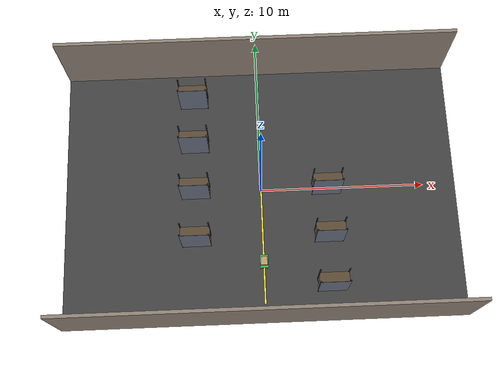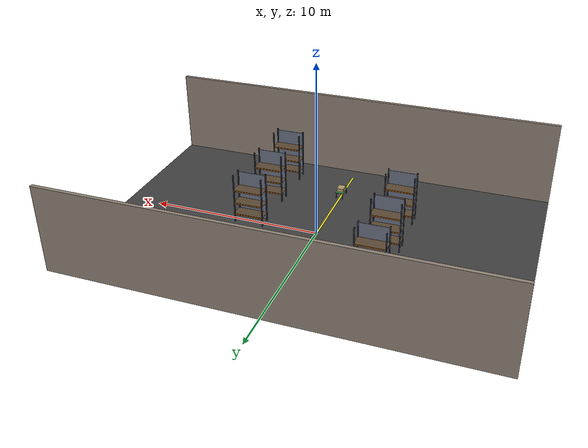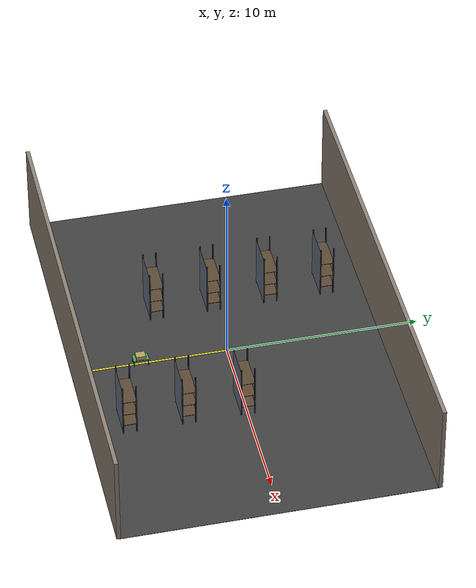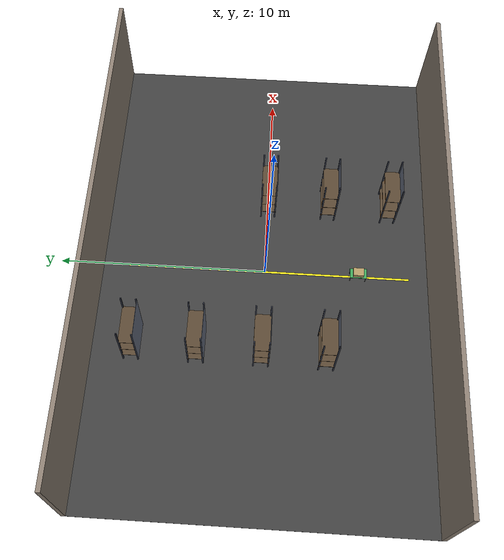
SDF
<sdf version="1.8">
 <world name="warehouse_world">
  <model name="floor">
   <static>true</static>
   <pose>0 0 -0.01 0 0 0</pose>
   <link name="link">
    <collision name="col"><geometry><box><size>24 16 0.02</size></box></geometry></collision>
    <visual name="vis">
     <geometry><box><size>24 16 0.02</size></box></geometry>
     <material><ambient>0.2 0.2 0.2 1</ambient><diffuse>0.25 0.25 0.25 1</diffuse></material>
    </visual>
   </link>
  </model>
  <model name="wall_north">
   <static>true</static>
   <pose>0 8 2.5 0 0 0</pose>
   <link name="link">
    <collision name="col"><geometry><box><size>24 0.2 5</size></box></geometry></collision>
    <visual name="vis">
     <geometry><box><size>24 0.2 5</size></box></geometry>
     <material><ambient>0.5 0.45 0.4 1</ambient><diffuse>0.55 0.5 0.45 1</diffuse></material>
    </visual>
   </link>
  </model>
  <model name="wall_south">
   <static>true</static>
   <pose>0 -8 2.5 0 0 0</pose>
   <link name="link">
    <collision name="col"><geometry><box><size>24 0.2 5</size></box></geometry></collision>
    <visual name="vis">
     <geometry><box><size>24 0.2 5</size></box></geometry>
     <material><ambient>0.5 0.45 0.4 1</ambient><diffuse>0.55 0.5 0.45 1</diffuse></material>
    </visual>
   </link>
  </model>
  <model name="rack_B2">
   <static>true</static>
   <pose>-4 -3 0 0 0 0</pose>
   <link name="link">
    <visual name="u1">
     <pose>0.84 0.34 1.5 0 0 0</pose>
     <geometry><box><size>0.06 0.06 3.0</size></box></geometry>
     <material><ambient>0.15 0.18 0.22 1</ambient><diffuse>0.20 0.22 0.28 1</diffuse></material>
    </visual>
    <collision name="u1c">
     <pose>0.84 0.34 1.5 0 0 0</pose>
     <geometry><box><size>0.06 0.06 3.0</size></box></geometry>
    </collision>
    <visual name="u2">
     <pose>0.84 -0.34 1.5 0 0 0</pose>
     <geometry><box><size>0.06 0.06 3.0</size></box></geometry>
     <material><ambient>0.15 0.18 0.22 1</ambient><diffuse>0.20 0.22 0.28 1</diffuse></material>
    </visual>
    <collision name="u2c">
     <pose>0.84 -0.34 1.5 0 0 0</pose>
     <geometry><box><size>0.06 0.06 3.0</size></box></geometry>
    </collision>
    <visual name="u3">
     <pose>-0.84 0.34 1.5 0 0 0</pose>
     <geometry><box><size>0.06 0.06 3.0</size></box></geometry>
     <material><ambient>0.15 0.18 0.22 1</ambient><diffuse>0.20 0.22 0.28 1</diffuse></material>
    </visual>
    <collision name="u3c">
     <pose>-0.84 0.34 1.5 0 0 0</pose>
     <geometry><box><size>0.06 0.06 3.0</size></box></geometry>
    </collision>
    <visual name="u4">
     <pose>-0.84 -0.34 1.5 0 0 0</pose>
     <geometry><box><size>0.06 0.06 3.0</size></box></geometry>
     <material><ambient>0.15 0.18 0.22 1</ambient><diffuse>0.20 0.22 0.28 1</diffuse></material>
    </visual>
    <collision name="u4c">
     <pose>-0.84 -0.34 1.5 0 0 0</pose>
     <geometry><box><size>0.06 0.06 3.0</size></box></geometry>
    </collision>
    <visual name="b1f">
     <pose>0 0.34 0.50 0 0 0</pose>
     <geometry><box><size>1.74 0.05 0.06</size></box></geometry>
     <material><ambient>0.90 0.45 0.05 1</ambient><diffuse>0.92 0.48 0.08 1</diffuse></material>
    </visual>
    <collision name="b1fc">
     <pose>0 0.34 0.50 0 0 0</pose>
     <geometry><box><size>1.74 0.05 0.06</size></box></geometry>
    </collision>
    <visual name="b1b">
     <pose>0 -0.34 0.50 0 0 0</pose>
     <geometry><box><size>1.74 0.05 0.06</size></box></geometry>
     <material><ambient>0.90 0.45 0.05 1</ambient><diffuse>0.92 0.48 0.08 1</diffuse></material>
    </visual>
    <collision name="b1bc">
     <pose>0 -0.34 0.50 0 0 0</pose>
     <geometry><box><size>1.74 0.05 0.06</size></box></geometry>
    </collision>
    <visual name="d1">
     <pose>0 0 0.54 0 0 0</pose>
     <geometry><box><size>1.74 0.74 0.02</size></box></geometry>
     <material><ambient>0.30 0.25 0.18 1</ambient><diffuse>0.35 0.28 0.20 1</diffuse></material>
    </visual>
    <collision name="d1c">
     <pose>0 0 0.54 0 0 0</pose>
     <geometry><box><size>1.74 0.74 0.02</size></box></geometry>
    </collision>
    <visual name="b2f">
     <pose>0 0.34 1.20 0 0 0</pose>
     <geometry><box><size>1.74 0.05 0.06</size></box></geometry>
     <material><ambient>0.90 0.45 0.05 1</ambient><diffuse>0.92 0.48 0.08 1</diffuse></material>
    </visual>
    <collision name="b2fc">
     <pose>0 0.34 1.20 0 0 0</pose>
     <geometry><box><size>1.74 0.05 0.06</size></box></geometry>
    </collision>
    <visual name="b2b">
     <pose>0 -0.34 1.20 0 0 0</pose>
     <geometry><box><size>1.74 0.05 0.06</size></box></geometry>
     <material><ambient>0.90 0.45 0.05 1</ambient><diffuse>0.92 0.48 0.08 1</diffuse></material>
    </visual>
    <collision name="b2bc">
     <pose>0 -0.34 1.20 0 0 0</pose>
     <geometry><box><size>1.74 0.05 0.06</size></box></geometry>
    </collision>
    <visual name="d2">
     <pose>0 0 1.24 0 0 0</pose>
     <geometry><box><size>1.74 0.74 0.02</size></box></geometry>
     <material><ambient>0.30 0.25 0.18 1</ambient><diffuse>0.35 0.28 0.20 1</diffuse></material>
    </visual>
    <collision name="d2c">
     <pose>0 0 1.24 0 0 0</pose>
     <geometry><box><size>1.74 0.74 0.02</size></box></geometry>
    </collision>
    <visual name="b3f">
     <pose>0 0.34 2.00 0 0 0</pose>
     <geometry><box><size>1.74 0.05 0.06</size></box></geometry>
     <material><ambient>0.90 0.45 0.05 1</ambient><diffuse>0.92 0.48 0.08 1</diffuse></material>
    </visual>
    <collision name="b3fc">
     <pose>0 0.34 2.00 0 0 0</pose>
     <geometry><box><size>1.74 0.05 0.06</size></box></geometry>
    </collision>
    <visual name="b3b">
     <pose>0 -0.34 2.00 0 0 0</pose>
     <geometry><box><size>1.74 0.05 0.06</size></box></geometry>
     <material><ambient>0.90 0.45 0.05 1</ambient><diffuse>0.92 0.48 0.08 1</diffuse></material>
    </visual>
    <collision name="b3bc">
     <pose>0 -0.34 2.00 0 0 0</pose>
     <geometry><box><size>1.74 0.05 0.06</size></box></geometry>
    </collision>
    <visual name="d3">
     <pose>0 0 2.04 0 0 0</pose>
     <geometry><box><size>1.74 0.74 0.02</size></box></geometry>
     <material><ambient>0.30 0.25 0.18 1</ambient><diffuse>0.35 0.28 0.20 1</diffuse></material>
    </visual>
    <collision name="d3c">
     <pose>0 0 2.04 0 0 0</pose>
     <geometry><box><size>1.74 0.74 0.02</size></box></geometry>
    </collision>
    <visual name="brace">
     <pose>0 -0.37 1.5 0 0 0</pose>
     <geometry><box><size>1.74 0.01 2.8</size></box></geometry>
     <material><ambient>0.35 0.38 0.45 1</ambient><diffuse>0.40 0.43 0.50 1</diffuse></material>
    </visual>
   </link>
  </model>
  <model name="rack_B3">
   <static>true</static>
   <pose>-4 0 0 0 0 0</pose>
   <link name="link">
    <visual name="u1">
     <pose>0.84 0.34 1.5 0 0 0</pose>
     <geometry><box><size>0.06 0.06 3.0</size></box></geometry>
     <material><ambient>0.15 0.18 0.22 1</ambient><diffuse>0.20 0.22 0.28 1</diffuse></material>
    </visual>
    <collision name="u1c">
     <pose>0.84 0.34 1.5 0 0 0</pose>
     <geometry><box><size>0.06 0.06 3.0</size></box></geometry>
    </collision>
    <visual name="u2">
     <pose>0.84 -0.34 1.5 0 0 0</pose>
     <geometry><box><size>0.06 0.06 3.0</size></box></geometry>
     <material><ambient>0.15 0.18 0.22 1</ambient><diffuse>0.20 0.22 0.28 1</diffuse></material>
    </visual>
    <collision name="u2c">
     <pose>0.84 -0.34 1.5 0 0 0</pose>
     <geometry><box><size>0.06 0.06 3.0</size></box></geometry>
    </collision>
    <visual name="u3">
     <pose>-0.84 0.34 1.5 0 0 0</pose>
     <geometry><box><size>0.06 0.06 3.0</size></box></geometry>
     <material><ambient>0.15 0.18 0.22 1</ambient><diffuse>0.20 0.22 0.28 1</diffuse></material>
    </visual>
    <collision name="u3c">
     <pose>-0.84 0.34 1.5 0 0 0</pose>
     <geometry><box><size>0.06 0.06 3.0</size></box></geometry>
    </collision>
    <visual name="u4">
     <pose>-0.84 -0.34 1.5 0 0 0</pose>
     <geometry><box><size>0.06 0.06 3.0</size></box></geometry>
     <material><ambient>0.15 0.18 0.22 1</ambient><diffuse>0.20 0.22 0.28 1</diffuse></material>
    </visual>
    <collision name="u4c">
     <pose>-0.84 -0.34 1.5 0 0 0</pose>
     <geometry><box><size>0.06 0.06 3.0</size></box></geometry>
    </collision>
    <visual name="b1f">
     <pose>0 0.34 0.50 0 0 0</pose>
     <geometry><box><size>1.74 0.05 0.06</size></box></geometry>
     <material><ambient>0.90 0.45 0.05 1</ambient><diffuse>0.92 0.48 0.08 1</diffuse></material>
    </visual>
    <collision name="b1fc">
     <pose>0 0.34 0.50 0 0 0</pose>
     <geometry><box><size>1.74 0.05 0.06</size></box></geometry>
    </collision>
    <visual name="b1b">
     <pose>0 -0.34 0.50 0 0 0</pose>
     <geometry><box><size>1.74 0.05 0.06</size></box></geometry>
     <material><ambient>0.90 0.45 0.05 1</ambient><diffuse>0.92 0.48 0.08 1</diffuse></material>
    </visual>
    <collision name="b1bc">
     <pose>0 -0.34 0.50 0 0 0</pose>
     <geometry><box><size>1.74 0.05 0.06</size></box></geometry>
    </collision>
    <visual name="d1">
     <pose>0 0 0.54 0 0 0</pose>
     <geometry><box><size>1.74 0.74 0.02</size></box></geometry>
     <material><ambient>0.30 0.25 0.18 1</ambient><diffuse>0.35 0.28 0.20 1</diffuse></material>
    </visual>
    <collision name="d1c">
     <pose>0 0 0.54 0 0 0</pose>
     <geometry><box><size>1.74 0.74 0.02</size></box></geometry>
    </collision>
    <visual name="b2f">
     <pose>0 0.34 1.20 0 0 0</pose>
     <geometry><box><size>1.74 0.05 0.06</size></box></geometry>
     <material><ambient>0.90 0.45 0.05 1</ambient><diffuse>0.92 0.48 0.08 1</diffuse></material>
    </visual>
    <collision name="b2fc">
     <pose>0 0.34 1.20 0 0 0</pose>
     <geometry><box><size>1.74 0.05 0.06</size></box></geometry>
    </collision>
    <visual name="b2b">
     <pose>0 -0.34 1.20 0 0 0</pose>
     <geometry><box><size>1.74 0.05 0.06</size></box></geometry>
     <material><ambient>0.90 0.45 0.05 1</ambient><diffuse>0.92 0.48 0.08 1</diffuse></material>
    </visual>
    <collision name="b2bc">
     <pose>0 -0.34 1.20 0 0 0</pose>
     <geometry><box><size>1.74 0.05 0.06</size></box></geometry>
    </collision>
    <visual name="d2">
     <pose>0 0 1.24 0 0 0</pose>
     <geometry><box><size>1.74 0.74 0.02</size></box></geometry>
     <material><ambient>0.30 0.25 0.18 1</ambient><diffuse>0.35 0.28 0.20 1</diffuse></material>
    </visual>
    <collision name="d2c">
     <pose>0 0 1.24 0 0 0</pose>
     <geometry><box><size>1.74 0.74 0.02</size></box></geometry>
    </collision>
    <visual name="b3f">
     <pose>0 0.34 2.00 0 0 0</pose>
     <geometry><box><size>1.74 0.05 0.06</size></box></geometry>
     <material><ambient>0.90 0.45 0.05 1</ambient><diffuse>0.92 0.48 0.08 1</diffuse></material>
    </visual>
    <collision name="b3fc">
     <pose>0 0.34 2.00 0 0 0</pose>
     <geometry><box><size>1.74 0.05 0.06</size></box></geometry>
    </collision>
    <visual name="b3b">
     <pose>0 -0.34 2.00 0 0 0</pose>
     <geometry><box><size>1.74 0.05 0.06</size></box></geometry>
     <material><ambient>0.90 0.45 0.05 1</ambient><diffuse>0.92 0.48 0.08 1</diffuse></material>
    </visual>
    <collision name="b3bc">
     <pose>0 -0.34 2.00 0 0 0</pose>
     <geometry><box><size>1.74 0.05 0.06</size></box></geometry>
    </collision>
    <visual name="d3">
     <pose>0 0 2.04 0 0 0</pose>
     <geometry><box><size>1.74 0.74 0.02</size></box></geometry>
     <material><ambient>0.30 0.25 0.18 1</ambient><diffuse>0.35 0.28 0.20 1</diffuse></material>
    </visual>
    <collision name="d3c">
     <pose>0 0 2.04 0 0 0</pose>
     <geometry><box><size>1.74 0.74 0.02</size></box></geometry>
    </collision>
    <visual name="brace">
     <pose>0 -0.37 1.5 0 0 0</pose>
     <geometry><box><size>1.74 0.01 2.8</size></box></geometry>
     <material><ambient>0.35 0.38 0.45 1</ambient><diffuse>0.40 0.43 0.50 1</diffuse></material>
    </visual>
   </link>
  </model>
  <model name="rack_B4">
   <static>true</static>
   <pose>-4 3 0 0 0 0</pose>
   <link name="link">
    <visual name="u1">
     <pose>0.84 0.34 1.5 0 0 0</pose>
     <geometry><box><size>0.06 0.06 3.0</size></box></geometry>
     <material><ambient>0.15 0.18 0.22 1</ambient><diffuse>0.20 0.22 0.28 1</diffuse></material>
    </visual>
    <collision name="u1c">
     <pose>0.84 0.34 1.5 0 0 0</pose>
     <geometry><box><size>0.06 0.06 3.0</size></box></geometry>
    </collision>
    <visual name="u2">
     <pose>0.84 -0.34 1.5 0 0 0</pose>
     <geometry><box><size>0.06 0.06 3.0</size></box></geometry>
     <material><ambient>0.15 0.18 0.22 1</ambient><diffuse>0.20 0.22 0.28 1</diffuse></material>
    </visual>
    <collision name="u2c">
     <pose>0.84 -0.34 1.5 0 0 0</pose>
     <geometry><box><size>0.06 0.06 3.0</size></box></geometry>
    </collision>
    <visual name="u3">
     <pose>-0.84 0.34 1.5 0 0 0</pose>
     <geometry><box><size>0.06 0.06 3.0</size></box></geometry>
     <material><ambient>0.15 0.18 0.22 1</ambient><diffuse>0.20 0.22 0.28 1</diffuse></material>
    </visual>
    <collision name="u3c">
     <pose>-0.84 0.34 1.5 0 0 0</pose>
     <geometry><box><size>0.06 0.06 3.0</size></box></geometry>
    </collision>
    <visual name="u4">
     <pose>-0.84 -0.34 1.5 0 0 0</pose>
     <geometry><box><size>0.06 0.06 3.0</size></box></geometry>
     <material><ambient>0.15 0.18 0.22 1</ambient><diffuse>0.20 0.22 0.28 1</diffuse></material>
    </visual>
    <collision name="u4c">
     <pose>-0.84 -0.34 1.5 0 0 0</pose>
     <geometry><box><size>0.06 0.06 3.0</size></box></geometry>
    </collision>
    <visual name="b1f">
     <pose>0 0.34 0.50 0 0 0</pose>
     <geometry><box><size>1.74 0.05 0.06</size></box></geometry>
     <material><ambient>0.90 0.45 0.05 1</ambient><diffuse>0.92 0.48 0.08 1</diffuse></material>
    </visual>
    <collision name="b1fc">
     <pose>0 0.34 0.50 0 0 0</pose>
     <geometry><box><size>1.74 0.05 0.06</size></box></geometry>
    </collision>
    <visual name="b1b">
     <pose>0 -0.34 0.50 0 0 0</pose>
     <geometry><box><size>1.74 0.05 0.06</size></box></geometry>
     <material><ambient>0.90 0.45 0.05 1</ambient><diffuse>0.92 0.48 0.08 1</diffuse></material>
    </visual>
    <collision name="b1bc">
     <pose>0 -0.34 0.50 0 0 0</pose>
     <geometry><box><size>1.74 0.05 0.06</size></box></geometry>
    </collision>
    <visual name="d1">
     <pose>0 0 0.54 0 0 0</pose>
     <geometry><box><size>1.74 0.74 0.02</size></box></geometry>
     <material><ambient>0.30 0.25 0.18 1</ambient><diffuse>0.35 0.28 0.20 1</diffuse></material>
    </visual>
    <collision name="d1c">
     <pose>0 0 0.54 0 0 0</pose>
     <geometry><box><size>1.74 0.74 0.02</size></box></geometry>
    </collision>
    <visual name="b2f">
     <pose>0 0.34 1.20 0 0 0</pose>
     <geometry><box><size>1.74 0.05 0.06</size></box></geometry>
     <material><ambient>0.90 0.45 0.05 1</ambient><diffuse>0.92 0.48 0.08 1</diffuse></material>
    </visual>
    <collision name="b2fc">
     <pose>0 0.34 1.20 0 0 0</pose>
     <geometry><box><size>1.74 0.05 0.06</size></box></geometry>
    </collision>
    <visual name="b2b">
     <pose>0 -0.34 1.20 0 0 0</pose>
     <geometry><box><size>1.74 0.05 0.06</size></box></geometry>
     <material><ambient>0.90 0.45 0.05 1</ambient><diffuse>0.92 0.48 0.08 1</diffuse></material>
    </visual>
    <collision name="b2bc">
     <pose>0 -0.34 1.20 0 0 0</pose>
     <geometry><box><size>1.74 0.05 0.06</size></box></geometry>
    </collision>
    <visual name="d2">
     <pose>0 0 1.24 0 0 0</pose>
     <geometry><box><size>1.74 0.74 0.02</size></box></geometry>
     <material><ambient>0.30 0.25 0.18 1</ambient><diffuse>0.35 0.28 0.20 1</diffuse></material>
    </visual>
    <collision name="d2c">
     <pose>0 0 1.24 0 0 0</pose>
     <geometry><box><size>1.74 0.74 0.02</size></box></geometry>
    </collision>
    <visual name="b3f">
     <pose>0 0.34 2.00 0 0 0</pose>
     <geometry><box><size>1.74 0.05 0.06</size></box></geometry>
     <material><ambient>0.90 0.45 0.05 1</ambient><diffuse>0.92 0.48 0.08 1</diffuse></material>
    </visual>
    <collision name="b3fc">
     <pose>0 0.34 2.00 0 0 0</pose>
     <geometry><box><size>1.74 0.05 0.06</size></box></geometry>
    </collision>
    <visual name="b3b">
     <pose>0 -0.34 2.00 0 0 0</pose>
     <geometry><box><size>1.74 0.05 0.06</size></box></geometry>
     <material><ambient>0.90 0.45 0.05 1</ambient><diffuse>0.92 0.48 0.08 1</diffuse></material>
    </visual>
    <collision name="b3bc">
     <pose>0 -0.34 2.00 0 0 0</pose>
     <geometry><box><size>1.74 0.05 0.06</size></box></geometry>
    </collision>
    <visual name="d3">
     <pose>0 0 2.04 0 0 0</pose>
     <geometry><box><size>1.74 0.74 0.02</size></box></geometry>
     <material><ambient>0.30 0.25 0.18 1</ambient><diffuse>0.35 0.28 0.20 1</diffuse></material>
    </visual>
    <collision name="d3c">
     <pose>0 0 2.04 0 0 0</pose>
     <geometry><box><size>1.74 0.74 0.02</size></box></geometry>
    </collision>
    <visual name="brace">
     <pose>0 -0.37 1.5 0 0 0</pose>
     <geometry><box><size>1.74 0.01 2.8</size></box></geometry>
     <material><ambient>0.35 0.38 0.45 1</ambient><diffuse>0.40 0.43 0.50 1</diffuse></material>
    </visual>
   </link>
  </model>
  <model name="rack_B5">
   <static>true</static>
   <pose>-4 6 0 0 0 0</pose>
   <link name="link">
    <visual name="u1">
     <pose>0.84 0.34 1.5 0 0 0</pose>
     <geometry><box><size>0.06 0.06 3.0</size></box></geometry>
     <material><ambient>0.15 0.18 0.22 1</ambient><diffuse>0.20 0.22 0.28 1</diffuse></material>
    </visual>
    <collision name="u1c">
     <pose>0.84 0.34 1.5 0 0 0</pose>
     <geometry><box><size>0.06 0.06 3.0</size></box></geometry>
    </collision>
    <visual name="u2">
     <pose>0.84 -0.34 1.5 0 0 0</pose>
     <geometry><box><size>0.06 0.06 3.0</size></box></geometry>
     <material><ambient>0.15 0.18 0.22 1</ambient><diffuse>0.20 0.22 0.28 1</diffuse></material>
    </visual>
    <collision name="u2c">
     <pose>0.84 -0.34 1.5 0 0 0</pose>
     <geometry><box><size>0.06 0.06 3.0</size></box></geometry>
    </collision>
    <visual name="u3">
     <pose>-0.84 0.34 1.5 0 0 0</pose>
     <geometry><box><size>0.06 0.06 3.0</size></box></geometry>
     <material><ambient>0.15 0.18 0.22 1</ambient><diffuse>0.20 0.22 0.28 1</diffuse></material>
    </visual>
    <collision name="u3c">
     <pose>-0.84 0.34 1.5 0 0 0</pose>
     <geometry><box><size>0.06 0.06 3.0</size></box></geometry>
    </collision>
    <visual name="u4">
     <pose>-0.84 -0.34 1.5 0 0 0</pose>
     <geometry><box><size>0.06 0.06 3.0</size></box></geometry>
     <material><ambient>0.15 0.18 0.22 1</ambient><diffuse>0.20 0.22 0.28 1</diffuse></material>
    </visual>
    <collision name="u4c">
     <pose>-0.84 -0.34 1.5 0 0 0</pose>
     <geometry><box><size>0.06 0.06 3.0</size></box></geometry>
    </collision>
    <visual name="b1f">
     <pose>0 0.34 0.50 0 0 0</pose>
     <geometry><box><size>1.74 0.05 0.06</size></box></geometry>
     <material><ambient>0.90 0.45 0.05 1</ambient><diffuse>0.92 0.48 0.08 1</diffuse></material>
    </visual>
    <collision name="b1fc">
     <pose>0 0.34 0.50 0 0 0</pose>
     <geometry><box><size>1.74 0.05 0.06</size></box></geometry>
    </collision>
    <visual name="b1b">
     <pose>0 -0.34 0.50 0 0 0</pose>
     <geometry><box><size>1.74 0.05 0.06</size></box></geometry>
     <material><ambient>0.90 0.45 0.05 1</ambient><diffuse>0.92 0.48 0.08 1</diffuse></material>
    </visual>
    <collision name="b1bc">
     <pose>0 -0.34 0.50 0 0 0</pose>
     <geometry><box><size>1.74 0.05 0.06</size></box></geometry>
    </collision>
    <visual name="d1">
     <pose>0 0 0.54 0 0 0</pose>
     <geometry><box><size>1.74 0.74 0.02</size></box></geometry>
     <material><ambient>0.30 0.25 0.18 1</ambient><diffuse>0.35 0.28 0.20 1</diffuse></material>
    </visual>
    <collision name="d1c">
     <pose>0 0 0.54 0 0 0</pose>
     <geometry><box><size>1.74 0.74 0.02</size></box></geometry>
    </collision>
    <visual name="b2f">
     <pose>0 0.34 1.20 0 0 0</pose>
     <geometry><box><size>1.74 0.05 0.06</size></box></geometry>
     <material><ambient>0.90 0.45 0.05 1</ambient><diffuse>0.92 0.48 0.08 1</diffuse></material>
    </visual>
    <collision name="b2fc">
     <pose>0 0.34 1.20 0 0 0</pose>
     <geometry><box><size>1.74 0.05 0.06</size></box></geometry>
    </collision>
    <visual name="b2b">
     <pose>0 -0.34 1.20 0 0 0</pose>
     <geometry><box><size>1.74 0.05 0.06</size></box></geometry>
     <material><ambient>0.90 0.45 0.05 1</ambient><diffuse>0.92 0.48 0.08 1</diffuse></material>
    </visual>
    <collision name="b2bc">
     <pose>0 -0.34 1.20 0 0 0</pose>
     <geometry><box><size>1.74 0.05 0.06</size></box></geometry>
    </collision>
    <visual name="d2">
     <pose>0 0 1.24 0 0 0</pose>
     <geometry><box><size>1.74 0.74 0.02</size></box></geometry>
     <material><ambient>0.30 0.25 0.18 1</ambient><diffuse>0.35 0.28 0.20 1</diffuse></material>
    </visual>
    <collision name="d2c">
     <pose>0 0 1.24 0 0 0</pose>
     <geometry><box><size>1.74 0.74 0.02</size></box></geometry>
    </collision>
    <visual name="b3f">
     <pose>0 0.34 2.00 0 0 0</pose>
     <geometry><box><size>1.74 0.05 0.06</size></box></geometry>
     <material><ambient>0.90 0.45 0.05 1</ambient><diffuse>0.92 0.48 0.08 1</diffuse></material>
    </visual>
    <collision name="b3fc">
     <pose>0 0.34 2.00 0 0 0</pose>
     <geometry><box><size>1.74 0.05 0.06</size></box></geometry>
    </collision>
    <visual name="b3b">
     <pose>0 -0.34 2.00 0 0 0</pose>
     <geometry><box><size>1.74 0.05 0.06</size></box></geometry>
     <material><ambient>0.90 0.45 0.05 1</ambient><diffuse>0.92 0.48 0.08 1</diffuse></material>
    </visual>
    <collision name="b3bc">
     <pose>0 -0.34 2.00 0 0 0</pose>
     <geometry><box><size>1.74 0.05 0.06</size></box></geometry>
    </collision>
    <visual name="d3">
     <pose>0 0 2.04 0 0 0</pose>
     <geometry><box><size>1.74 0.74 0.02</size></box></geometry>
     <material><ambient>0.30 0.25 0.18 1</ambient><diffuse>0.35 0.28 0.20 1</diffuse></material>
    </visual>
    <collision name="d3c">
     <pose>0 0 2.04 0 0 0</pose>
     <geometry><box><size>1.74 0.74 0.02</size></box></geometry>
    </collision>
    <visual name="brace">
     <pose>0 -0.37 1.5 0 0 0</pose>
     <geometry><box><size>1.74 0.01 2.8</size></box></geometry>
     <material><ambient>0.35 0.38 0.45 1</ambient><diffuse>0.40 0.43 0.50 1</diffuse></material>
    </visual>
   </link>
  </model>
  <model name="rack_C1">
   <static>true</static>
   <pose>4 -6 0 0 0 0</pose>
   <link name="link">
    <visual name="u1">
     <pose>0.84 0.34 1.5 0 0 0</pose>
     <geometry><box><size>0.06 0.06 3.0</size></box></geometry>
     <material><ambient>0.15 0.18 0.22 1</ambient><diffuse>0.20 0.22 0.28 1</diffuse></material>
    </visual>
    <collision name="u1c">
     <pose>0.84 0.34 1.5 0 0 0</pose>
     <geometry><box><size>0.06 0.06 3.0</size></box></geometry>
    </collision>
    <visual name="u2">
     <pose>0.84 -0.34 1.5 0 0 0</pose>
     <geometry><box><size>0.06 0.06 3.0</size></box></geometry>
     <material><ambient>0.15 0.18 0.22 1</ambient><diffuse>0.20 0.22 0.28 1</diffuse></material>
    </visual>
    <collision name="u2c">
     <pose>0.84 -0.34 1.5 0 0 0</pose>
     <geometry><box><size>0.06 0.06 3.0</size></box></geometry>
    </collision>
    <visual name="u3">
     <pose>-0.84 0.34 1.5 0 0 0</pose>
     <geometry><box><size>0.06 0.06 3.0</size></box></geometry>
     <material><ambient>0.15 0.18 0.22 1</ambient><diffuse>0.20 0.22 0.28 1</diffuse></material>
    </visual>
    <collision name="u3c">
     <pose>-0.84 0.34 1.5 0 0 0</pose>
     <geometry><box><size>0.06 0.06 3.0</size></box></geometry>
    </collision>
    <visual name="u4">
     <pose>-0.84 -0.34 1.5 0 0 0</pose>
     <geometry><box><size>0.06 0.06 3.0</size></box></geometry>
     <material><ambient>0.15 0.18 0.22 1</ambient><diffuse>0.20 0.22 0.28 1</diffuse></material>
    </visual>
    <collision name="u4c">
     <pose>-0.84 -0.34 1.5 0 0 0</pose>
     <geometry><box><size>0.06 0.06 3.0</size></box></geometry>
    </collision>
    <visual name="b1f">
     <pose>0 0.34 0.50 0 0 0</pose>
     <geometry><box><size>1.74 0.05 0.06</size></box></geometry>
     <material><ambient>0.90 0.45 0.05 1</ambient><diffuse>0.92 0.48 0.08 1</diffuse></material>
    </visual>
    <collision name="b1fc">
     <pose>0 0.34 0.50 0 0 0</pose>
     <geometry><box><size>1.74 0.05 0.06</size></box></geometry>
    </collision>
    <visual name="b1b">
     <pose>0 -0.34 0.50 0 0 0</pose>
     <geometry><box><size>1.74 0.05 0.06</size></box></geometry>
     <material><ambient>0.90 0.45 0.05 1</ambient><diffuse>0.92 0.48 0.08 1</diffuse></material>
    </visual>
    <collision name="b1bc">
     <pose>0 -0.34 0.50 0 0 0</pose>
     <geometry><box><size>1.74 0.05 0.06</size></box></geometry>
    </collision>
    <visual name="d1">
     <pose>0 0 0.54 0 0 0</pose>
     <geometry><box><size>1.74 0.74 0.02</size></box></geometry>
     <material><ambient>0.30 0.25 0.18 1</ambient><diffuse>0.35 0.28 0.20 1</diffuse></material>
    </visual>
    <collision name="d1c">
     <pose>0 0 0.54 0 0 0</pose>
     <geometry><box><size>1.74 0.74 0.02</size></box></geometry>
    </collision>
    <visual name="b2f">
     <pose>0 0.34 1.20 0 0 0</pose>
     <geometry><box><size>1.74 0.05 0.06</size></box></geometry>
     <material><ambient>0.90 0.45 0.05 1</ambient><diffuse>0.92 0.48 0.08 1</diffuse></material>
    </visual>
    <collision name="b2fc">
     <pose>0 0.34 1.20 0 0 0</pose>
     <geometry><box><size>1.74 0.05 0.06</size></box></geometry>
    </collision>
    <visual name="b2b">
     <pose>0 -0.34 1.20 0 0 0</pose>
     <geometry><box><size>1.74 0.05 0.06</size></box></geometry>
     <material><ambient>0.90 0.45 0.05 1</ambient><diffuse>0.92 0.48 0.08 1</diffuse></material>
    </visual>
    <collision name="b2bc">
     <pose>0 -0.34 1.20 0 0 0</pose>
     <geometry><box><size>1.74 0.05 0.06</size></box></geometry>
    </collision>
    <visual name="d2">
     <pose>0 0 1.24 0 0 0</pose>
     <geometry><box><size>1.74 0.74 0.02</size></box></geometry>
     <material><ambient>0.30 0.25 0.18 1</ambient><diffuse>0.35 0.28 0.20 1</diffuse></material>
    </visual>
    <collision name="d2c">
     <pose>0 0 1.24 0 0 0</pose>
     <geometry><box><size>1.74 0.74 0.02</size></box></geometry>
    </collision>
    <visual name="b3f">
     <pose>0 0.34 2.00 0 0 0</pose>
     <geometry><box><size>1.74 0.05 0.06</size></box></geometry>
     <material><ambient>0.90 0.45 0.05 1</ambient><diffuse>0.92 0.48 0.08 1</diffuse></material>
    </visual>
    <collision name="b3fc">
     <pose>0 0.34 2.00 0 0 0</pose>
     <geometry><box><size>1.74 0.05 0.06</size></box></geometry>
    </collision>
    <visual name="b3b">
     <pose>0 -0.34 2.00 0 0 0</pose>
     <geometry><box><size>1.74 0.05 0.06</size></box></geometry>
     <material><ambient>0.90 0.45 0.05 1</ambient><diffuse>0.92 0.48 0.08 1</diffuse></material>
    </visual>
    <collision name="b3bc">
     <pose>0 -0.34 2.00 0 0 0</pose>
     <geometry><box><size>1.74 0.05 0.06</size></box></geometry>
    </collision>
    <visual name="d3">
     <pose>0 0 2.04 0 0 0</pose>
     <geometry><box><size>1.74 0.74 0.02</size></box></geometry>
     <material><ambient>0.30 0.25 0.18 1</ambient><diffuse>0.35 0.28 0.20 1</diffuse></material>
    </visual>
    <collision name="d3c">
     <pose>0 0 2.04 0 0 0</pose>
     <geometry><box><size>1.74 0.74 0.02</size></box></geometry>
    </collision>
    <visual name="brace">
     <pose>0 -0.37 1.5 0 0 0</pose>
     <geometry><box><size>1.74 0.01 2.8</size></box></geometry>
     <material><ambient>0.35 0.38 0.45 1</ambient><diffuse>0.40 0.43 0.50 1</diffuse></material>
    </visual>
   </link>
  </model>
  <model name="rack_C2">
   <static>true</static>
   <pose>4 -3 0 0 0 0</pose>
   <link name="link">
    <visual name="u1">
     <pose>0.84 0.34 1.5 0 0 0</pose>
     <geometry><box><size>0.06 0.06 3.0</size></box></geometry>
     <material><ambient>0.15 0.18 0.22 1</ambient><diffuse>0.20 0.22 0.28 1</diffuse></material>
    </visual>
    <collision name="u1c">
     <pose>0.84 0.34 1.5 0 0 0</pose>
     <geometry><box><size>0.06 0.06 3.0</size></box></geometry>
    </collision>
    <visual name="u2">
     <pose>0.84 -0.34 1.5 0 0 0</pose>
     <geometry><box><size>0.06 0.06 3.0</size></box></geometry>
     <material><ambient>0.15 0.18 0.22 1</ambient><diffuse>0.20 0.22 0.28 1</diffuse></material>
    </visual>
    <collision name="u2c">
     <pose>0.84 -0.34 1.5 0 0 0</pose>
     <geometry><box><size>0.06 0.06 3.0</size></box></geometry>
    </collision>
    <visual name="u3">
     <pose>-0.84 0.34 1.5 0 0 0</pose>
     <geometry><box><size>0.06 0.06 3.0</size></box></geometry>
     <material><ambient>0.15 0.18 0.22 1</ambient><diffuse>0.20 0.22 0.28 1</diffuse></material>
    </visual>
    <collision name="u3c">
     <pose>-0.84 0.34 1.5 0 0 0</pose>
     <geometry><box><size>0.06 0.06 3.0</size></box></geometry>
    </collision>
    <visual name="u4">
     <pose>-0.84 -0.34 1.5 0 0 0</pose>
     <geometry><box><size>0.06 0.06 3.0</size></box></geometry>
     <material><ambient>0.15 0.18 0.22 1</ambient><diffuse>0.20 0.22 0.28 1</diffuse></material>
    </visual>
    <collision name="u4c">
     <pose>-0.84 -0.34 1.5 0 0 0</pose>
     <geometry><box><size>0.06 0.06 3.0</size></box></geometry>
    </collision>
    <visual name="b1f">
     <pose>0 0.34 0.50 0 0 0</pose>
     <geometry><box><size>1.74 0.05 0.06</size></box></geometry>
     <material><ambient>0.90 0.45 0.05 1</ambient><diffuse>0.92 0.48 0.08 1</diffuse></material>
    </visual>
    <collision name="b1fc">
     <pose>0 0.34 0.50 0 0 0</pose>
     <geometry><box><size>1.74 0.05 0.06</size></box></geometry>
    </collision>
    <visual name="b1b">
     <pose>0 -0.34 0.50 0 0 0</pose>
     <geometry><box><size>1.74 0.05 0.06</size></box></geometry>
     <material><ambient>0.90 0.45 0.05 1</ambient><diffuse>0.92 0.48 0.08 1</diffuse></material>
    </visual>
    <collision name="b1bc">
     <pose>0 -0.34 0.50 0 0 0</pose>
     <geometry><box><size>1.74 0.05 0.06</size></box></geometry>
    </collision>
    <visual name="d1">
     <pose>0 0 0.54 0 0 0</pose>
     <geometry><box><size>1.74 0.74 0.02</size></box></geometry>
     <material><ambient>0.30 0.25 0.18 1</ambient><diffuse>0.35 0.28 0.20 1</diffuse></material>
    </visual>
    <collision name="d1c">
     <pose>0 0 0.54 0 0 0</pose>
     <geometry><box><size>1.74 0.74 0.02</size></box></geometry>
    </collision>
    <visual name="b2f">
     <pose>0 0.34 1.20 0 0 0</pose>
     <geometry><box><size>1.74 0.05 0.06</size></box></geometry>
     <material><ambient>0.90 0.45 0.05 1</ambient><diffuse>0.92 0.48 0.08 1</diffuse></material>
    </visual>
    <collision name="b2fc">
     <pose>0 0.34 1.20 0 0 0</pose>
     <geometry><box><size>1.74 0.05 0.06</size></box></geometry>
    </collision>
    <visual name="b2b">
     <pose>0 -0.34 1.20 0 0 0</pose>
     <geometry><box><size>1.74 0.05 0.06</size></box></geometry>
     <material><ambient>0.90 0.45 0.05 1</ambient><diffuse>0.92 0.48 0.08 1</diffuse></material>
    </visual>
    <collision name="b2bc">
     <pose>0 -0.34 1.20 0 0 0</pose>
     <geometry><box><size>1.74 0.05 0.06</size></box></geometry>
    </collision>
    <visual name="d2">
     <pose>0 0 1.24 0 0 0</pose>
     <geometry><box><size>1.74 0.74 0.02</size></box></geometry>
     <material><ambient>0.30 0.25 0.18 1</ambient><diffuse>0.35 0.28 0.20 1</diffuse></material>
    </visual>
    <collision name="d2c">
     <pose>0 0 1.24 0 0 0</pose>
     <geometry><box><size>1.74 0.74 0.02</size></box></geometry>
    </collision>
    <visual name="b3f">
     <pose>0 0.34 2.00 0 0 0</pose>
     <geometry><box><size>1.74 0.05 0.06</size></box></geometry>
     <material><ambient>0.90 0.45 0.05 1</ambient><diffuse>0.92 0.48 0.08 1</diffuse></material>
    </visual>
    <collision name="b3fc">
     <pose>0 0.34 2.00 0 0 0</pose>
     <geometry><box><size>1.74 0.05 0.06</size></box></geometry>
    </collision>
    <visual name="b3b">
     <pose>0 -0.34 2.00 0 0 0</pose>
     <geometry><box><size>1.74 0.05 0.06</size></box></geometry>
     <material><ambient>0.90 0.45 0.05 1</ambient><diffuse>0.92 0.48 0.08 1</diffuse></material>
    </visual>
    <collision name="b3bc">
     <pose>0 -0.34 2.00 0 0 0</pose>
     <geometry><box><size>1.74 0.05 0.06</size></box></geometry>
    </collision>
    <visual name="d3">
     <pose>0 0 2.04 0 0 0</pose>
     <geometry><box><size>1.74 0.74 0.02</size></box></geometry>
     <material><ambient>0.30 0.25 0.18 1</ambient><diffuse>0.35 0.28 0.20 1</diffuse></material>
    </visual>
    <collision name="d3c">
     <pose>0 0 2.04 0 0 0</pose>
     <geometry><box><size>1.74 0.74 0.02</size></box></geometry>
    </collision>
    <visual name="brace">
     <pose>0 -0.37 1.5 0 0 0</pose>
     <geometry><box><size>1.74 0.01 2.8</size></box></geometry>
     <material><ambient>0.35 0.38 0.45 1</ambient><diffuse>0.40 0.43 0.50 1</diffuse></material>
    </visual>
   </link>
  </model>
  <model name="rack_C3">
   <static>true</static>
   <pose>4 0 0 0 0 0</pose>
   <link name="link">
    <visual name="u1">
     <pose>0.84 0.34 1.5 0 0 0</pose>
     <geometry><box><size>0.06 0.06 3.0</size></box></geometry>
     <material><ambient>0.15 0.18 0.22 1</ambient><diffuse>0.20 0.22 0.28 1</diffuse></material>
    </visual>
    <collision name="u1c">
     <pose>0.84 0.34 1.5 0 0 0</pose>
     <geometry><box><size>0.06 0.06 3.0</size></box></geometry>
    </collision>
    <visual name="u2">
     <pose>0.84 -0.34 1.5 0 0 0</pose>
     <geometry><box><size>0.06 0.06 3.0</size></box></geometry>
     <material><ambient>0.15 0.18 0.22 1</ambient><diffuse>0.20 0.22 0.28 1</diffuse></material>
    </visual>
    <collision name="u2c">
     <pose>0.84 -0.34 1.5 0 0 0</pose>
     <geometry><box><size>0.06 0.06 3.0</size></box></geometry>
    </collision>
    <visual name="u3">
     <pose>-0.84 0.34 1.5 0 0 0</pose>
     <geometry><box><size>0.06 0.06 3.0</size></box></geometry>
     <material><ambient>0.15 0.18 0.22 1</ambient><diffuse>0.20 0.22 0.28 1</diffuse></material>
    </visual>
    <collision name="u3c">
     <pose>-0.84 0.34 1.5 0 0 0</pose>
     <geometry><box><size>0.06 0.06 3.0</size></box></geometry>
    </collision>
    <visual name="u4">
     <pose>-0.84 -0.34 1.5 0 0 0</pose>
     <geometry><box><size>0.06 0.06 3.0</size></box></geometry>
     <material><ambient>0.15 0.18 0.22 1</ambient><diffuse>0.20 0.22 0.28 1</diffuse></material>
    </visual>
    <collision name="u4c">
     <pose>-0.84 -0.34 1.5 0 0 0</pose>
     <geometry><box><size>0.06 0.06 3.0</size></box></geometry>
    </collision>
    <visual name="b1f">
     <pose>0 0.34 0.50 0 0 0</pose>
     <geometry><box><size>1.74 0.05 0.06</size></box></geometry>
     <material><ambient>0.90 0.45 0.05 1</ambient><diffuse>0.92 0.48 0.08 1</diffuse></material>
    </visual>
    <collision name="b1fc">
     <pose>0 0.34 0.50 0 0 0</pose>
     <geometry><box><size>1.74 0.05 0.06</size></box></geometry>
    </collision>
    <visual name="b1b">
     <pose>0 -0.34 0.50 0 0 0</pose>
     <geometry><box><size>1.74 0.05 0.06</size></box></geometry>
     <material><ambient>0.90 0.45 0.05 1</ambient><diffuse>0.92 0.48 0.08 1</diffuse></material>
    </visual>
    <collision name="b1bc">
     <pose>0 -0.34 0.50 0 0 0</pose>
     <geometry><box><size>1.74 0.05 0.06</size></box></geometry>
    </collision>
    <visual name="d1">
     <pose>0 0 0.54 0 0 0</pose>
     <geometry><box><size>1.74 0.74 0.02</size></box></geometry>
     <material><ambient>0.30 0.25 0.18 1</ambient><diffuse>0.35 0.28 0.20 1</diffuse></material>
    </visual>
    <collision name="d1c">
     <pose>0 0 0.54 0 0 0</pose>
     <geometry><box><size>1.74 0.74 0.02</size></box></geometry>
    </collision>
    <visual name="b2f">
     <pose>0 0.34 1.20 0 0 0</pose>
     <geometry><box><size>1.74 0.05 0.06</size></box></geometry>
     <material><ambient>0.90 0.45 0.05 1</ambient><diffuse>0.92 0.48 0.08 1</diffuse></material>
    </visual>
    <collision name="b2fc">
     <pose>0 0.34 1.20 0 0 0</pose>
     <geometry><box><size>1.74 0.05 0.06</size></box></geometry>
    </collision>
    <visual name="b2b">
     <pose>0 -0.34 1.20 0 0 0</pose>
     <geometry><box><size>1.74 0.05 0.06</size></box></geometry>
     <material><ambient>0.90 0.45 0.05 1</ambient><diffuse>0.92 0.48 0.08 1</diffuse></material>
    </visual>
    <collision name="b2bc">
     <pose>0 -0.34 1.20 0 0 0</pose>
     <geometry><box><size>1.74 0.05 0.06</size></box></geometry>
    </collision>
    <visual name="d2">
     <pose>0 0 1.24 0 0 0</pose>
     <geometry><box><size>1.74 0.74 0.02</size></box></geometry>
     <material><ambient>0.30 0.25 0.18 1</ambient><diffuse>0.35 0.28 0.20 1</diffuse></material>
    </visual>
    <collision name="d2c">
     <pose>0 0 1.24 0 0 0</pose>
     <geometry><box><size>1.74 0.74 0.02</size></box></geometry>
    </collision>
    <visual name="b3f">
     <pose>0 0.34 2.00 0 0 0</pose>
     <geometry><box><size>1.74 0.05 0.06</size></box></geometry>
     <material><ambient>0.90 0.45 0.05 1</ambient><diffuse>0.92 0.48 0.08 1</diffuse></material>
    </visual>
    <collision name="b3fc">
     <pose>0 0.34 2.00 0 0 0</pose>
     <geometry><box><size>1.74 0.05 0.06</size></box></geometry>
    </collision>
    <visual name="b3b">
     <pose>0 -0.34 2.00 0 0 0</pose>
     <geometry><box><size>1.74 0.05 0.06</size></box></geometry>
     <material><ambient>0.90 0.45 0.05 1</ambient><diffuse>0.92 0.48 0.08 1</diffuse></material>
    </visual>
    <collision name="b3bc">
     <pose>0 -0.34 2.00 0 0 0</pose>
     <geometry><box><size>1.74 0.05 0.06</size></box></geometry>
    </collision>
    <visual name="d3">
     <pose>0 0 2.04 0 0 0</pose>
     <geometry><box><size>1.74 0.74 0.02</size></box></geometry>
     <material><ambient>0.30 0.25 0.18 1</ambient><diffuse>0.35 0.28 0.20 1</diffuse></material>
    </visual>
    <collision name="d3c">
     <pose>0 0 2.04 0 0 0</pose>
     <geometry><box><size>1.74 0.74 0.02</size></box></geometry>
    </collision>
    <visual name="brace">
     <pose>0 -0.37 1.5 0 0 0</pose>
     <geometry><box><size>1.74 0.01 2.8</size></box></geometry>
     <material><ambient>0.35 0.38 0.45 1</ambient><diffuse>0.40 0.43 0.50 1</diffuse></material>
    </visual>
   </link>
  </model>
  <model name="cart_3">
   <pose>0 -4.5 0 0 0 0</pose>
   <link name="platform">
    <visual name="top">
     <pose>0 0 0.41 0 0 0</pose>
     <geometry><box><size>0.50 0.80 0.02</size></box></geometry>
     <material><ambient>0.2 0.6 0.3 1</ambient><diffuse>0.25 0.65 0.35 1</diffuse></material>
    </visual>
    <collision name="topc">
     <pose>0 0 0.41 0 0 0</pose>
     <geometry><box><size>0.50 0.80 0.02</size></box></geometry>
    </collision>
    <visual name="leg1">
     <pose>0.20 0.37 0.20 0 0 0</pose>
     <geometry><box><size>0.03 0.03 0.40</size></box></geometry>
     <material><ambient>0.3 0.3 0.3 1</ambient><diffuse>0.4 0.4 0.4 1</diffuse></material>
    </visual>
    <collision name="leg1c">
     <pose>0.20 0.37 0.20 0 0 0</pose>
     <geometry><box><size>0.03 0.03 0.40</size></box></geometry>
    </collision>
    <visual name="leg2">
     <pose>0.20 -0.37 0.20 0 0 0</pose>
     <geometry><box><size>0.03 0.03 0.40</size></box></geometry>
     <material><ambient>0.3 0.3 0.3 1</ambient><diffuse>0.4 0.4 0.4 1</diffuse></material>
    </visual>
    <collision name="leg2c">
     <pose>0.20 -0.37 0.20 0 0 0</pose>
     <geometry><box><size>0.03 0.03 0.40</size></box></geometry>
    </collision>
    <visual name="leg3">
     <pose>-0.20 0.37 0.20 0 0 0</pose>
     <geometry><box><size>0.03 0.03 0.40</size></box></geometry>
     <material><ambient>0.3 0.3 0.3 1</ambient><diffuse>0.4 0.4 0.4 1</diffuse></material>
    </visual>
    <collision name="leg3c">
     <pose>-0.20 0.37 0.20 0 0 0</pose>
     <geometry><box><size>0.03 0.03 0.40</size></box></geometry>
    </collision>
    <visual name="leg4">
     <pose>-0.20 -0.37 0.20 0 0 0</pose>
     <geometry><box><size>0.03 0.03 0.40</size></box></geometry>
     <material><ambient>0.3 0.3 0.3 1</ambient><diffuse>0.4 0.4 0.4 1</diffuse></material>
    </visual>
    <collision name="leg4c">
     <pose>-0.20 -0.37 0.20 0 0 0</pose>
     <geometry><box><size>0.03 0.03 0.40</size></box></geometry>
    </collision>
    <visual name="cargo">
     <pose>0 0 0.52 0 0 0</pose>
     <geometry><box><size>0.40 0.50 0.20</size></box></geometry>
     <material><ambient>0.65 0.55 0.35 1</ambient><diffuse>0.70 0.60 0.40 1</diffuse></material>
    </visual>
    <collision name="cargoc">
     <pose>0 0 0.52 0 0 0</pose>
     <geometry><box><size>0.40 0.50 0.20</size></box></geometry>
    </collision>
    <inertial>
     <mass>3.0</mass>
     <inertia><ixx>0.05</ixx><iyy>0.05</iyy><izz>0.05</izz><ixy>0</ixy><ixz>0</ixz><iyz>0</iyz></inertia>
    </inertial>
   </link>
  </model>
  <model name="floor_line_2">
   <static>true</static>
   <pose>0 0 0.001 0 0 0</pose>
   <link name="link">
    <visual name="vis">
     <geometry><box><size>0.10 14 0.002</size></box></geometry>
     <material><ambient>0.9 0.85 0.0 1</ambient><diffuse>0.95 0.90 0.1 1</diffuse></material>
    </visual>
   </link>
  </model>
 </world>
</sdf>
